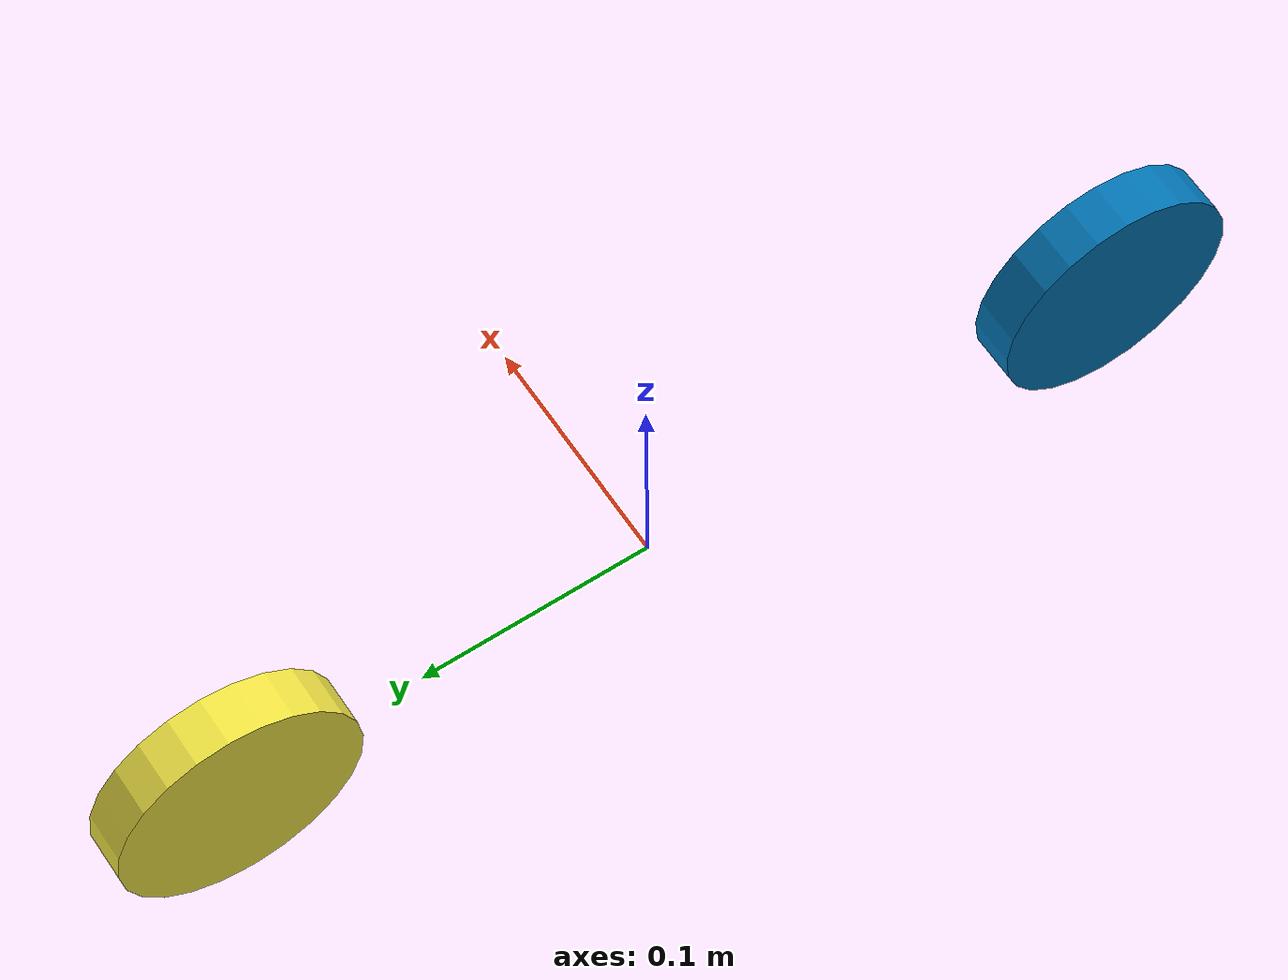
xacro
<?xml version="1.0"?>
<robot xmlns:xacro="http://www.ros.org/wiki/xacro" name="my_bot">

  <xacro:property name="M_PI" value="3.1415926535897931" />

  <xacro:property name="base_radius" value="0.2"/>
  <xacro:property name="wheel_radius" value="0.05"/>
  <xacro:property name="wheel_width"  value="0.02"/>
  <xacro:property name="wheel_sep"    value="0.35"/>
  <xacro:property name="wheel_x_offset" value="-0.02"/>
  <xacro:property name="wheel_y_offset" value="0.19"/>
  <xacro:property name="caster_radius" value="0.045"/>
  <xacro:property name="caster_x_offset" value="0.18"/>

  <material name="blue">
    <color rgba="0.0 0.3 0.8 1.0"/>
  </material>
  <xacro:macro name="inertial_box" params="mass x y z">
    <inertial>
      <mass value="${mass}"/>
      <origin xyz="0 0 0"/>
      <inertia
        ixx="${mass/12.0 * (y*y + z*z)}"
        iyy="${mass/12.0 * (x*x + z*z)}"
        izz="${mass/12.0 * (x*x + y*y)}"
        ixy="0" ixz="0" iyz="0"/>
    </inertial>
  </xacro:macro>

  <link name="base_link">
    </link>

  <link name="imu_link"/>
  <joint name="imu_joint" type="fixed">
    <parent link="base_link"/>
    <child link="imu_link"/>
    <origin xyz="0 0 0.15"/>
  </joint>

  <link name="lidar_link">
    </link>

  <joint name="lidar_joint" type="fixed">
    <parent link="base_link"/>
    <child link="lidar_link"/>
    <origin xyz="0 0 0.18"/>
  </joint>

  <xacro:macro name="wheel" params="name y">
    <link name="${name}">
      <visual>
        <origin xyz="0 0 0" rpy="0 ${M_PI/2} 0"/> <geometry>
          <cylinder radius="${wheel_radius}" length="${wheel_width}"/>
        </geometry>
        <material name="dark"/>
        </visual>

      <collision>
        <origin xyz="0 0 0" rpy="0 ${M_PI/2} 0"/>
        <geometry>
          <cylinder radius="${wheel_radius}" length="${wheel_width}"/>
        </geometry>
      </collision>

      <inertial>
        <mass value="0.5"/>
        <origin xyz="0 0 0"/>
        <inertia
          ixx="1e-3" iyy="1e-3" izz="1e-3"
          ixy="0" ixz="0" iyz="0"/>
      </inertial>
    </link>

    <joint name="${name}_joint" type="continuous">
      <parent link="base_link"/>
      <child link="${name}"/>

      <origin
        xyz="${wheel_x_offset} ${y} ${wheel_radius}"
        rpy="0 0 0"/>

      <axis xyz="0 1 0"/>
    </joint>

  </xacro:macro>

  <xacro:wheel name="wheel_left_link"  y="${ wheel_y_offset }"/>
  <xacro:wheel name="wheel_right_link" y="${-wheel_y_offset }"/>

  <link name="caster_link">
    </link>

  <joint name="caster_joint" type="fixed">
    <parent link="base_link"/>
    <child link="caster_link"/>
    <origin
      xyz="${caster_x_offset} 0 0"
      rpy="0 0 0"/>
  </joint>

  </robot>
